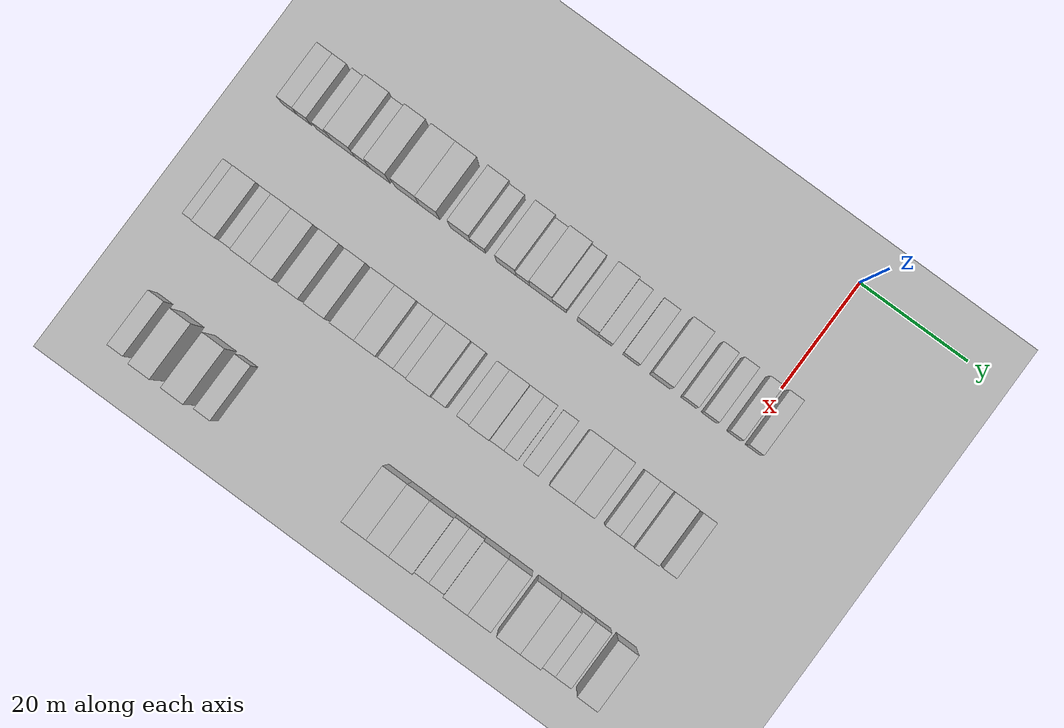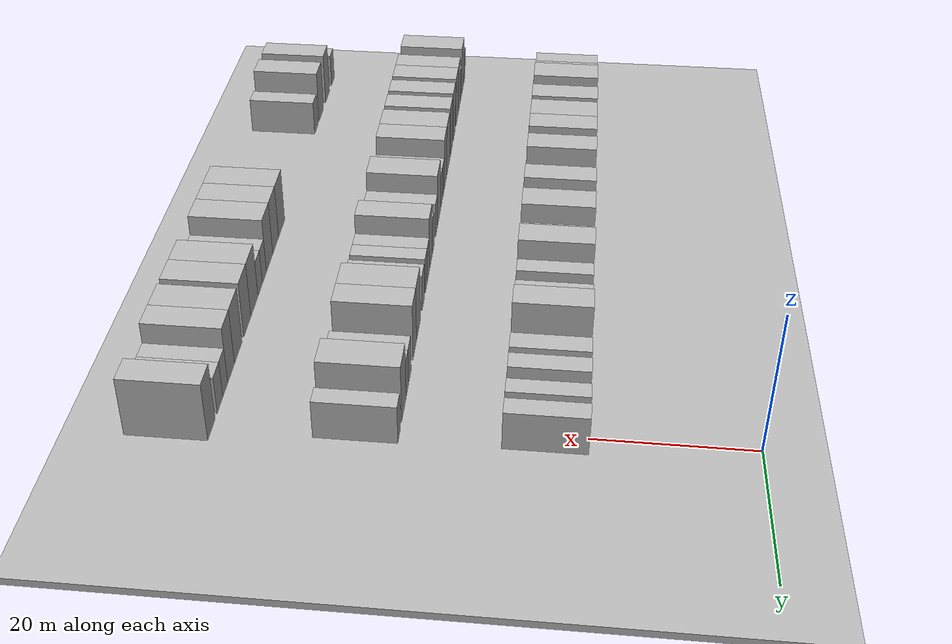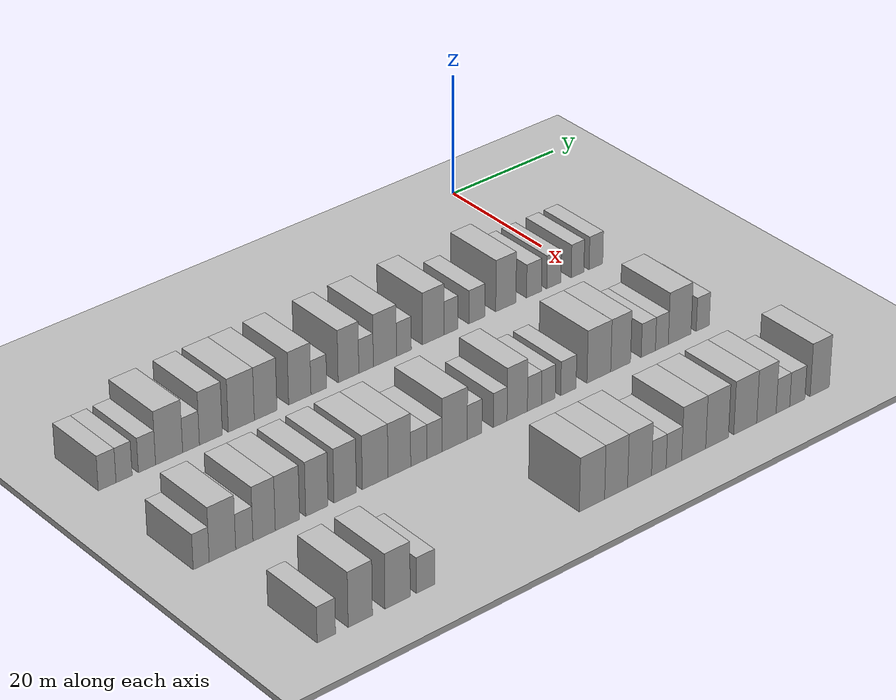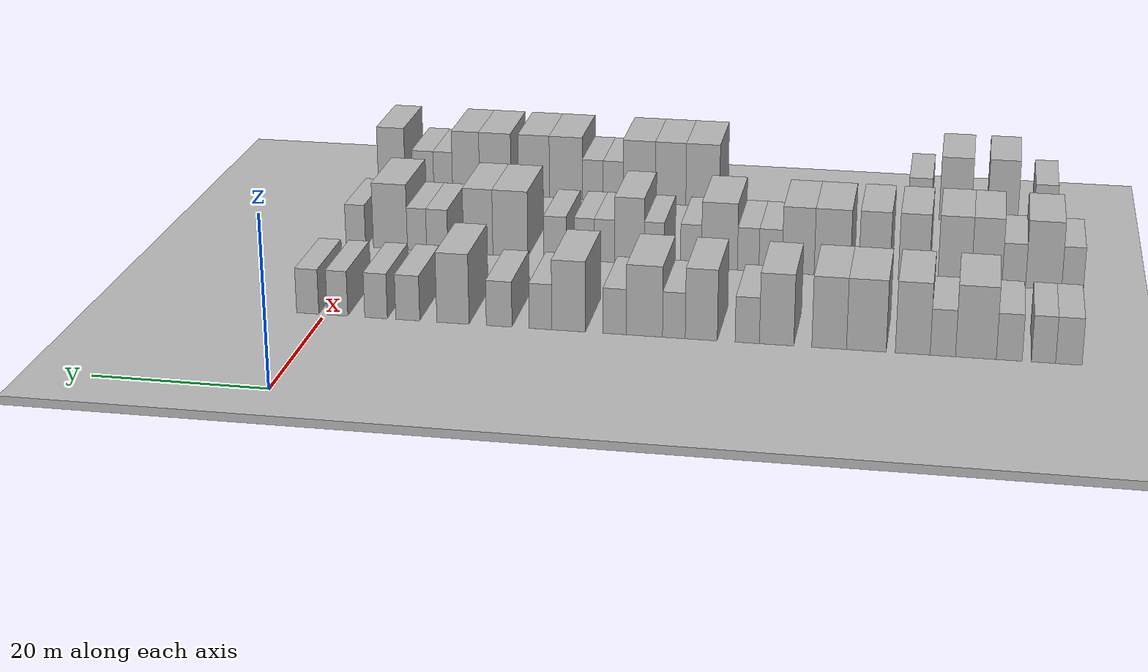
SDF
<sdf version="1.6">
 <world name="default">
  <include><name>ground_plane_1</name><uri>model://HANNAS_ground_plane</uri></include>
  <include>
   <name>ground_plane_2</name>
   <uri>model://HANNAS_ground_plane</uri>
   <pose>100 0 0  0 0 0</pose>
  </include>
  <model name="building_44">
   <static>1</static>
   <pose>25.0000 -84.5058 0 0.000000 0.000000 0.000000</pose>
   <link name="link">
    <pose>0 0 3.00 0 0 0</pose>
    <collision name="collision"><geometry><box><size>10.0000 2.8405 6.0000</size></box></geometry></collision>
    <visual name="visual">
     <cast_shadows>0</cast_shadows>
     <geometry><box><size>10.0000 2.8405 6.0000</size></box></geometry>
     <material>
      <script>
       <uri>model://HANNAS_wall/materials/scripts</uri>
       <uri>model://HANNAS_wall/materials/textures</uri>
       <name>vrc/HANNAS_wall</name>
      </script>
     </material>
    </visual>
   </link>
  </model>
  <model name="building_45">
   <static>1</static>
   <pose>25.0000 -81.7837 0 0.000000 0.000000 0.000000</pose>
   <link name="link">
    <pose>0 0 3.00 0 0 0</pose>
    <collision name="collision"><geometry><box><size>10.0000 2.6037 6.0000</size></box></geometry></collision>
    <visual name="visual">
     <cast_shadows>0</cast_shadows>
     <geometry><box><size>10.0000 2.6037 6.0000</size></box></geometry>
     <material>
      <script>
       <uri>model://HANNAS_wall/materials/scripts</uri>
       <uri>model://HANNAS_wall/materials/textures</uri>
       <name>vrc/HANNAS_wall</name>
      </script>
     </material>
    </visual>
   </link>
  </model>
  <model name="building_46">
   <static>1</static>
   <pose>25.0000 -78.0829 0 0.000000 0.000000 0.000000</pose>
   <link name="link">
    <pose>0 0 3.00 0 0 0</pose>
    <collision name="collision"><geometry><box><size>10.0000 2.7979 6.0000</size></box></geometry></collision>
    <visual name="visual">
     <cast_shadows>0</cast_shadows>
     <geometry><box><size>10.0000 2.7979 6.0000</size></box></geometry>
     <material>
      <script>
       <uri>model://HANNAS_wall/materials/scripts</uri>
       <uri>model://HANNAS_wall/materials/textures</uri>
       <name>vrc/HANNAS_wall</name>
      </script>
     </material>
    </visual>
   </link>
  </model>
  <model name="building_47">
   <static>1</static>
   <pose>25.0000 -74.4609 0 0.000000 0.000000 0.000000</pose>
   <link name="link">
    <pose>0 0 4.50 0 0 0</pose>
    <collision name="collision"><geometry><box><size>10.0000 4.4461 9.0000</size></box></geometry></collision>
    <visual name="visual">
     <cast_shadows>0</cast_shadows>
     <geometry><box><size>10.0000 4.4461 9.0000</size></box></geometry>
     <material>
      <script>
       <uri>model://HANNAS_wall/materials/scripts</uri>
       <uri>model://HANNAS_wall/materials/textures</uri>
       <name>vrc/HANNAS_wall</name>
      </script>
     </material>
    </visual>
   </link>
  </model>
  <model name="building_48">
   <static>1</static>
   <pose>25.0000 -70.8536 0 0.000000 0.000000 0.000000</pose>
   <link name="link">
    <pose>0 0 3.00 0 0 0</pose>
    <collision name="collision"><geometry><box><size>10.0000 2.7686 6.0000</size></box></geometry></collision>
    <visual name="visual">
     <cast_shadows>0</cast_shadows>
     <geometry><box><size>10.0000 2.7686 6.0000</size></box></geometry>
     <material>
      <script>
       <uri>model://HANNAS_wall/materials/scripts</uri>
       <uri>model://HANNAS_wall/materials/textures</uri>
       <name>vrc/HANNAS_wall</name>
      </script>
     </material>
    </visual>
   </link>
  </model>
  <model name="building_49">
   <static>1</static>
   <pose>25.0000 -67.5581 0 0.000000 0.000000 0.000000</pose>
   <link name="link">
    <pose>0 0 4.50 0 0 0</pose>
    <collision name="collision"><geometry><box><size>10.0000 3.8223 9.0000</size></box></geometry></collision>
    <visual name="visual">
     <cast_shadows>0</cast_shadows>
     <geometry><box><size>10.0000 3.8223 9.0000</size></box></geometry>
     <material>
      <script>
       <uri>model://HANNAS_wall/materials/scripts</uri>
       <uri>model://HANNAS_wall/materials/textures</uri>
       <name>vrc/HANNAS_wall</name>
      </script>
     </material>
    </visual>
   </link>
  </model>
  <model name="building_50">
   <static>1</static>
   <pose>25.0000 -62.4517 0 0.000000 0.000000 0.000000</pose>
   <link name="link">
    <pose>0 0 4.50 0 0 0</pose>
    <collision name="collision"><geometry><box><size>10.0000 4.3905 9.0000</size></box></geometry></collision>
    <visual name="visual">
     <cast_shadows>0</cast_shadows>
     <geometry><box><size>10.0000 4.3905 9.0000</size></box></geometry>
     <material>
      <script>
       <uri>model://HANNAS_wall/materials/scripts</uri>
       <uri>model://HANNAS_wall/materials/textures</uri>
       <name>vrc/HANNAS_wall</name>
      </script>
     </material>
    </visual>
   </link>
  </model>
  <model name="building_51">
   <static>1</static>
   <pose>25.0000 -58.3320 0 0.000000 0.000000 0.000000</pose>
   <link name="link">
    <pose>0 0 4.50 0 0 0</pose>
    <collision name="collision"><geometry><box><size>10.0000 3.8488 9.0000</size></box></geometry></collision>
    <visual name="visual">
     <cast_shadows>0</cast_shadows>
     <geometry><box><size>10.0000 3.8488 9.0000</size></box></geometry>
     <material>
      <script>
       <uri>model://HANNAS_wall/materials/scripts</uri>
       <uri>model://HANNAS_wall/materials/textures</uri>
       <name>vrc/HANNAS_wall</name>
      </script>
     </material>
    </visual>
   </link>
  </model>
  <model name="building_52">
   <static>1</static>
   <pose>25.0000 -52.4828 0 0.000000 0.000000 0.000000</pose>
   <link name="link">
    <pose>0 0 4.50 0 0 0</pose>
    <collision name="collision"><geometry><box><size>10.0000 3.8496 9.0000</size></box></geometry></collision>
    <visual name="visual">
     <cast_shadows>0</cast_shadows>
     <geometry><box><size>10.0000 3.8496 9.0000</size></box></geometry>
     <material>
      <script>
       <uri>model://HANNAS_wall/materials/scripts</uri>
       <uri>model://HANNAS_wall/materials/textures</uri>
       <name>vrc/HANNAS_wall</name>
      </script>
     </material>
    </visual>
   </link>
  </model>
  <model name="building_53">
   <static>1</static>
   <pose>25.0000 -49.1930 0 0.000000 0.000000 0.000000</pose>
   <link name="link">
    <pose>0 0 3.00 0 0 0</pose>
    <collision name="collision"><geometry><box><size>10.0000 2.7300 6.0000</size></box></geometry></collision>
    <visual name="visual">
     <cast_shadows>0</cast_shadows>
     <geometry><box><size>10.0000 2.7300 6.0000</size></box></geometry>
     <material>
      <script>
       <uri>model://HANNAS_wall/materials/scripts</uri>
       <uri>model://HANNAS_wall/materials/textures</uri>
       <name>vrc/HANNAS_wall</name>
      </script>
     </material>
    </visual>
   </link>
  </model>
  <model name="building_54">
   <static>1</static>
   <pose>25.0000 -44.0140 0 0.000000 0.000000 0.000000</pose>
   <link name="link">
    <pose>0 0 4.50 0 0 0</pose>
    <collision name="collision"><geometry><box><size>10.0000 3.6281 9.0000</size></box></geometry></collision>
    <visual name="visual">
     <cast_shadows>0</cast_shadows>
     <geometry><box><size>10.0000 3.6281 9.0000</size></box></geometry>
     <material>
      <script>
       <uri>model://HANNAS_wall/materials/scripts</uri>
       <uri>model://HANNAS_wall/materials/textures</uri>
       <name>vrc/HANNAS_wall</name>
      </script>
     </material>
    </visual>
   </link>
  </model>
  <model name="building_55">
   <static>1</static>
   <pose>25.0000 -40.9127 0 0.000000 0.000000 0.000000</pose>
   <link name="link">
    <pose>0 0 3.00 0 0 0</pose>
    <collision name="collision"><geometry><box><size>10.0000 2.5745 6.0000</size></box></geometry></collision>
    <visual name="visual">
     <cast_shadows>0</cast_shadows>
     <geometry><box><size>10.0000 2.5745 6.0000</size></box></geometry>
     <material>
      <script>
       <uri>model://HANNAS_wall/materials/scripts</uri>
       <uri>model://HANNAS_wall/materials/textures</uri>
       <name>vrc/HANNAS_wall</name>
      </script>
     </material>
    </visual>
   </link>
  </model>
  <model name="building_56">
   <static>1</static>
   <pose>25.0000 -37.5626 0 0.000000 0.000000 0.000000</pose>
   <link name="link">
    <pose>0 0 4.50 0 0 0</pose>
    <collision name="collision"><geometry><box><size>10.0000 4.1255 9.0000</size></box></geometry></collision>
    <visual name="visual">
     <cast_shadows>0</cast_shadows>
     <geometry><box><size>10.0000 4.1255 9.0000</size></box></geometry>
     <material>
      <script>
       <uri>model://HANNAS_wall/materials/scripts</uri>
       <uri>model://HANNAS_wall/materials/textures</uri>
       <name>vrc/HANNAS_wall</name>
      </script>
     </material>
    </visual>
   </link>
  </model>
  <model name="building_57">
   <static>1</static>
   <pose>25.0000 -34.1613 0 0.000000 0.000000 0.000000</pose>
   <link name="link">
    <pose>0 0 3.00 0 0 0</pose>
    <collision name="collision"><geometry><box><size>10.0000 2.6770 6.0000</size></box></geometry></collision>
    <visual name="visual">
     <cast_shadows>0</cast_shadows>
     <geometry><box><size>10.0000 2.6770 6.0000</size></box></geometry>
     <material>
      <script>
       <uri>model://HANNAS_wall/materials/scripts</uri>
       <uri>model://HANNAS_wall/materials/textures</uri>
       <name>vrc/HANNAS_wall</name>
      </script>
     </material>
    </visual>
   </link>
  </model>
  <model name="building_58">
   <static>1</static>
   <pose>25.0000 -28.8814 0 0.000000 0.000000 0.000000</pose>
   <link name="link">
    <pose>0 0 4.50 0 0 0</pose>
    <collision name="collision"><geometry><box><size>10.0000 3.8828 9.0000</size></box></geometry></collision>
    <visual name="visual">
     <cast_shadows>0</cast_shadows>
     <geometry><box><size>10.0000 3.8828 9.0000</size></box></geometry>
     <material>
      <script>
       <uri>model://HANNAS_wall/materials/scripts</uri>
       <uri>model://HANNAS_wall/materials/textures</uri>
       <name>vrc/HANNAS_wall</name>
      </script>
     </material>
    </visual>
   </link>
  </model>
  <model name="building_59">
   <static>1</static>
   <pose>25.0000 -25.6390 0 0.000000 0.000000 0.000000</pose>
   <link name="link">
    <pose>0 0 3.00 0 0 0</pose>
    <collision name="collision"><geometry><box><size>10.0000 2.6020 6.0000</size></box></geometry></collision>
    <visual name="visual">
     <cast_shadows>0</cast_shadows>
     <geometry><box><size>10.0000 2.6020 6.0000</size></box></geometry>
     <material>
      <script>
       <uri>model://HANNAS_wall/materials/scripts</uri>
       <uri>model://HANNAS_wall/materials/textures</uri>
       <name>vrc/HANNAS_wall</name>
      </script>
     </material>
    </visual>
   </link>
  </model>
  <model name="building_60">
   <static>1</static>
   <pose>25.0000 -20.8407 0 0.000000 0.000000 0.000000</pose>
   <link name="link">
    <pose>0 0 3.00 0 0 0</pose>
    <collision name="collision"><geometry><box><size>10.0000 2.9945 6.0000</size></box></geometry></collision>
    <visual name="visual">
     <cast_shadows>0</cast_shadows>
     <geometry><box><size>10.0000 2.9945 6.0000</size></box></geometry>
     <material>
      <script>
       <uri>model://HANNAS_wall/materials/scripts</uri>
       <uri>model://HANNAS_wall/materials/textures</uri>
       <name>vrc/HANNAS_wall</name>
      </script>
     </material>
    </visual>
   </link>
  </model>
  <model name="building_61">
   <static>1</static>
   <pose>25.0000 -15.4505 0 0.000000 0.000000 0.000000</pose>
   <link name="link">
    <pose>0 0 4.50 0 0 0</pose>
    <collision name="collision"><geometry><box><size>10.0000 3.7859 9.0000</size></box></geometry></collision>
    <visual name="visual">
     <cast_shadows>0</cast_shadows>
     <geometry><box><size>10.0000 3.7859 9.0000</size></box></geometry>
     <material>
      <script>
       <uri>model://HANNAS_wall/materials/scripts</uri>
       <uri>model://HANNAS_wall/materials/textures</uri>
       <name>vrc/HANNAS_wall</name>
      </script>
     </material>
    </visual>
   </link>
  </model>
  <model name="building_62">
   <static>1</static>
   <pose>25.0000 -10.1453 0 0.000000 0.000000 0.000000</pose>
   <link name="link">
    <pose>0 0 3.00 0 0 0</pose>
    <collision name="collision"><geometry><box><size>10.0000 2.8247 6.0000</size></box></geometry></collision>
    <visual name="visual">
     <cast_shadows>0</cast_shadows>
     <geometry><box><size>10.0000 2.8247 6.0000</size></box></geometry>
     <material>
      <script>
       <uri>model://HANNAS_wall/materials/scripts</uri>
       <uri>model://HANNAS_wall/materials/textures</uri>
       <name>vrc/HANNAS_wall</name>
      </script>
     </material>
    </visual>
   </link>
  </model>
  <model name="building_63">
   <static>1</static>
   <pose>25.0000 -6.3930 0 0.000000 0.000000 0.000000</pose>
   <link name="link">
    <pose>0 0 3.00 0 0 0</pose>
    <collision name="collision"><geometry><box><size>10.0000 2.6798 6.0000</size></box></geometry></collision>
    <visual name="visual">
     <cast_shadows>0</cast_shadows>
     <geometry><box><size>10.0000 2.6798 6.0000</size></box></geometry>
     <material>
      <script>
       <uri>model://HANNAS_wall/materials/scripts</uri>
       <uri>model://HANNAS_wall/materials/textures</uri>
       <name>vrc/HANNAS_wall</name>
      </script>
     </material>
    </visual>
   </link>
  </model>
  <model name="building_64">
   <static>1</static>
   <pose>25.0000 -1.8246 0 0.000000 0.000000 0.000000</pose>
   <link name="link">
    <pose>0 0 3.00 0 0 0</pose>
    <collision name="collision"><geometry><box><size>10.0000 2.4569 6.0000</size></box></geometry></collision>
    <visual name="visual">
     <cast_shadows>0</cast_shadows>
     <geometry><box><size>10.0000 2.4569 6.0000</size></box></geometry>
     <material>
      <script>
       <uri>model://HANNAS_wall/materials/scripts</uri>
       <uri>model://HANNAS_wall/materials/textures</uri>
       <name>vrc/HANNAS_wall</name>
      </script>
     </material>
    </visual>
   </link>
  </model>
  <model name="building_65">
   <static>1</static>
   <pose>25.0000 1.7316 0 0.000000 0.000000 0.000000</pose>
   <link name="link">
    <pose>0 0 3.00 0 0 0</pose>
    <collision name="collision"><geometry><box><size>10.0000 2.6555 6.0000</size></box></geometry></collision>
    <visual name="visual">
     <cast_shadows>0</cast_shadows>
     <geometry><box><size>10.0000 2.6555 6.0000</size></box></geometry>
     <material>
      <script>
       <uri>model://HANNAS_wall/materials/scripts</uri>
       <uri>model://HANNAS_wall/materials/textures</uri>
       <name>vrc/HANNAS_wall</name>
      </script>
     </material>
    </visual>
   </link>
  </model>
  <model name="building_170">
   <static>1</static>
   <pose>47.0000 -85.4432 0 0.000000 0.000000 0.000000</pose>
   <link name="link">
    <pose>0 0 3.00 0 0 0</pose>
    <collision name="collision"><geometry><box><size>10.0000 2.5335 6.0000</size></box></geometry></collision>
    <visual name="visual">
     <cast_shadows>0</cast_shadows>
     <geometry><box><size>10.0000 2.5335 6.0000</size></box></geometry>
     <material>
      <script>
       <uri>model://HANNAS_wall/materials/scripts</uri>
       <uri>model://HANNAS_wall/materials/textures</uri>
       <name>vrc/HANNAS_wall</name>
      </script>
     </material>
    </visual>
   </link>
  </model>
  <model name="building_171">
   <static>1</static>
   <pose>47.0000 -82.0679 0 0.000000 0.000000 0.000000</pose>
   <link name="link">
    <pose>0 0 4.50 0 0 0</pose>
    <collision name="collision"><geometry><box><size>10.0000 4.2171 9.0000</size></box></geometry></collision>
    <visual name="visual">
     <cast_shadows>0</cast_shadows>
     <geometry><box><size>10.0000 4.2171 9.0000</size></box></geometry>
     <material>
      <script>
       <uri>model://HANNAS_wall/materials/scripts</uri>
       <uri>model://HANNAS_wall/materials/textures</uri>
       <name>vrc/HANNAS_wall</name>
      </script>
     </material>
    </visual>
   </link>
  </model>
  <model name="building_172">
   <static>1</static>
   <pose>47.0000 -78.5802 0 0.000000 0.000000 0.000000</pose>
   <link name="link">
    <pose>0 0 3.00 0 0 0</pose>
    <collision name="collision"><geometry><box><size>10.0000 2.7584 6.0000</size></box></geometry></collision>
    <visual name="visual">
     <cast_shadows>0</cast_shadows>
     <geometry><box><size>10.0000 2.7584 6.0000</size></box></geometry>
     <material>
      <script>
       <uri>model://HANNAS_wall/materials/scripts</uri>
       <uri>model://HANNAS_wall/materials/textures</uri>
       <name>vrc/HANNAS_wall</name>
      </script>
     </material>
    </visual>
   </link>
  </model>
  <model name="building_173">
   <static>1</static>
   <pose>47.0000 -75.3910 0 0.000000 0.000000 0.000000</pose>
   <link name="link">
    <pose>0 0 4.50 0 0 0</pose>
    <collision name="collision"><geometry><box><size>10.0000 3.6202 9.0000</size></box></geometry></collision>
    <visual name="visual">
     <cast_shadows>0</cast_shadows>
     <geometry><box><size>10.0000 3.6202 9.0000</size></box></geometry>
     <material>
      <script>
       <uri>model://HANNAS_wall/materials/scripts</uri>
       <uri>model://HANNAS_wall/materials/textures</uri>
       <name>vrc/HANNAS_wall</name>
      </script>
     </material>
    </visual>
   </link>
  </model>
  <model name="building_174">
   <static>1</static>
   <pose>47.0000 -71.5980 0 0.000000 0.000000 0.000000</pose>
   <link name="link">
    <pose>0 0 4.50 0 0 0</pose>
    <collision name="collision"><geometry><box><size>10.0000 3.9658 9.0000</size></box></geometry></collision>
    <visual name="visual">
     <cast_shadows>0</cast_shadows>
     <geometry><box><size>10.0000 3.9658 9.0000</size></box></geometry>
     <material>
      <script>
       <uri>model://HANNAS_wall/materials/scripts</uri>
       <uri>model://HANNAS_wall/materials/textures</uri>
       <name>vrc/HANNAS_wall</name>
      </script>
     </material>
    </visual>
   </link>
  </model>
  <model name="building_175">
   <static>1</static>
   <pose>47.0000 -66.7783 0 0.000000 0.000000 0.000000</pose>
   <link name="link">
    <pose>0 0 4.50 0 0 0</pose>
    <collision name="collision"><geometry><box><size>10.0000 3.6736 9.0000</size></box></geometry></collision>
    <visual name="visual">
     <cast_shadows>0</cast_shadows>
     <geometry><box><size>10.0000 3.6736 9.0000</size></box></geometry>
     <material>
      <script>
       <uri>model://HANNAS_wall/materials/scripts</uri>
       <uri>model://HANNAS_wall/materials/textures</uri>
       <name>vrc/HANNAS_wall</name>
      </script>
     </material>
    </visual>
   </link>
  </model>
  <model name="building_176">
   <static>1</static>
   <pose>47.0000 -62.0770 0 0.000000 0.000000 0.000000</pose>
   <link name="link">
    <pose>0 0 4.50 0 0 0</pose>
    <collision name="collision"><geometry><box><size>10.0000 3.7291 9.0000</size></box></geometry></collision>
    <visual name="visual">
     <cast_shadows>0</cast_shadows>
     <geometry><box><size>10.0000 3.7291 9.0000</size></box></geometry>
     <material>
      <script>
       <uri>model://HANNAS_wall/materials/scripts</uri>
       <uri>model://HANNAS_wall/materials/textures</uri>
       <name>vrc/HANNAS_wall</name>
      </script>
     </material>
    </visual>
   </link>
  </model>
  <model name="building_177">
   <static>1</static>
   <pose>47.0000 -57.0420 0 0.000000 0.000000 0.000000</pose>
   <link name="link">
    <pose>0 0 4.50 0 0 0</pose>
    <collision name="collision"><geometry><box><size>10.0000 4.3408 9.0000</size></box></geometry></collision>
    <visual name="visual">
     <cast_shadows>0</cast_shadows>
     <geometry><box><size>10.0000 4.3408 9.0000</size></box></geometry>
     <material>
      <script>
       <uri>model://HANNAS_wall/materials/scripts</uri>
       <uri>model://HANNAS_wall/materials/textures</uri>
       <name>vrc/HANNAS_wall</name>
      </script>
     </material>
    </visual>
   </link>
  </model>
  <model name="building_178">
   <static>1</static>
   <pose>47.0000 -52.9338 0 0.000000 0.000000 0.000000</pose>
   <link name="link">
    <pose>0 0 4.50 0 0 0</pose>
    <collision name="collision"><geometry><box><size>10.0000 3.8756 9.0000</size></box></geometry></collision>
    <visual name="visual">
     <cast_shadows>0</cast_shadows>
     <geometry><box><size>10.0000 3.8756 9.0000</size></box></geometry>
     <material>
      <script>
       <uri>model://HANNAS_wall/materials/scripts</uri>
       <uri>model://HANNAS_wall/materials/textures</uri>
       <name>vrc/HANNAS_wall</name>
      </script>
     </material>
    </visual>
   </link>
  </model>
  <model name="building_179">
   <static>1</static>
   <pose>47.0000 -49.5938 0 0.000000 0.000000 0.000000</pose>
   <link name="link">
    <pose>0 0 3.00 0 0 0</pose>
    <collision name="collision"><geometry><box><size>10.0000 2.8046 6.0000</size></box></geometry></collision>
    <visual name="visual">
     <cast_shadows>0</cast_shadows>
     <geometry><box><size>10.0000 2.8046 6.0000</size></box></geometry>
     <material>
      <script>
       <uri>model://HANNAS_wall/materials/scripts</uri>
       <uri>model://HANNAS_wall/materials/textures</uri>
       <name>vrc/HANNAS_wall</name>
      </script>
     </material>
    </visual>
   </link>
  </model>
  <model name="building_180">
   <static>1</static>
   <pose>47.0000 -46.8817 0 0.000000 0.000000 0.000000</pose>
   <link name="link">
    <pose>0 0 3.00 0 0 0</pose>
    <collision name="collision"><geometry><box><size>10.0000 2.6195 6.0000</size></box></geometry></collision>
    <visual name="visual">
     <cast_shadows>0</cast_shadows>
     <geometry><box><size>10.0000 2.6195 6.0000</size></box></geometry>
     <material>
      <script>
       <uri>model://HANNAS_wall/materials/scripts</uri>
       <uri>model://HANNAS_wall/materials/textures</uri>
       <name>vrc/HANNAS_wall</name>
      </script>
     </material>
    </visual>
   </link>
  </model>
  <model name="building_181">
   <static>1</static>
   <pose>47.0000 -43.3803 0 0.000000 0.000000 0.000000</pose>
   <link name="link">
    <pose>0 0 4.50 0 0 0</pose>
    <collision name="collision"><geometry><box><size>10.0000 4.3834 9.0000</size></box></geometry></collision>
    <visual name="visual">
     <cast_shadows>0</cast_shadows>
     <geometry><box><size>10.0000 4.3834 9.0000</size></box></geometry>
     <material>
      <script>
       <uri>model://HANNAS_wall/materials/scripts</uri>
       <uri>model://HANNAS_wall/materials/textures</uri>
       <name>vrc/HANNAS_wall</name>
      </script>
     </material>
    </visual>
   </link>
  </model>
  <model name="building_182">
   <static>1</static>
   <pose>47.0000 -39.9063 0 0.000000 0.000000 0.000000</pose>
   <link name="link">
    <pose>0 0 3.00 0 0 0</pose>
    <collision name="collision"><geometry><box><size>10.0000 2.5646 6.0000</size></box></geometry></collision>
    <visual name="visual">
     <cast_shadows>0</cast_shadows>
     <geometry><box><size>10.0000 2.5646 6.0000</size></box></geometry>
     <material>
      <script>
       <uri>model://HANNAS_wall/materials/scripts</uri>
       <uri>model://HANNAS_wall/materials/textures</uri>
       <name>vrc/HANNAS_wall</name>
      </script>
     </material>
    </visual>
   </link>
  </model>
  <model name="building_183">
   <static>1</static>
   <pose>47.0000 -35.3991 0 0.000000 0.000000 0.000000</pose>
   <link name="link">
    <pose>0 0 3.00 0 0 0</pose>
    <collision name="collision"><geometry><box><size>10.0000 2.4497 6.0000</size></box></geometry></collision>
    <visual name="visual">
     <cast_shadows>0</cast_shadows>
     <geometry><box><size>10.0000 2.4497 6.0000</size></box></geometry>
     <material>
      <script>
       <uri>model://HANNAS_wall/materials/scripts</uri>
       <uri>model://HANNAS_wall/materials/textures</uri>
       <name>vrc/HANNAS_wall</name>
      </script>
     </material>
    </visual>
   </link>
  </model>
  <model name="building_184">
   <static>1</static>
   <pose>47.0000 -32.3540 0 0.000000 0.000000 0.000000</pose>
   <link name="link">
    <pose>0 0 4.50 0 0 0</pose>
    <collision name="collision"><geometry><box><size>10.0000 3.6405 9.0000</size></box></geometry></collision>
    <visual name="visual">
     <cast_shadows>0</cast_shadows>
     <geometry><box><size>10.0000 3.6405 9.0000</size></box></geometry>
     <material>
      <script>
       <uri>model://HANNAS_wall/materials/scripts</uri>
       <uri>model://HANNAS_wall/materials/textures</uri>
       <name>vrc/HANNAS_wall</name>
      </script>
     </material>
    </visual>
   </link>
  </model>
  <model name="building_185">
   <static>1</static>
   <pose>47.0000 -29.2591 0 0.000000 0.000000 0.000000</pose>
   <link name="link">
    <pose>0 0 3.00 0 0 0</pose>
    <collision name="collision"><geometry><box><size>10.0000 2.5494 6.0000</size></box></geometry></collision>
    <visual name="visual">
     <cast_shadows>0</cast_shadows>
     <geometry><box><size>10.0000 2.5494 6.0000</size></box></geometry>
     <material>
      <script>
       <uri>model://HANNAS_wall/materials/scripts</uri>
       <uri>model://HANNAS_wall/materials/textures</uri>
       <name>vrc/HANNAS_wall</name>
      </script>
     </material>
    </visual>
   </link>
  </model>
  <model name="building_186">
   <static>1</static>
   <pose>47.0000 -26.7447 0 0.000000 0.000000 0.000000</pose>
   <link name="link">
    <pose>0 0 3.00 0 0 0</pose>
    <collision name="collision"><geometry><box><size>10.0000 2.4794 6.0000</size></box></geometry></collision>
    <visual name="visual">
     <cast_shadows>0</cast_shadows>
     <geometry><box><size>10.0000 2.4794 6.0000</size></box></geometry>
     <material>
      <script>
       <uri>model://HANNAS_wall/materials/scripts</uri>
       <uri>model://HANNAS_wall/materials/textures</uri>
       <name>vrc/HANNAS_wall</name>
      </script>
     </material>
    </visual>
   </link>
  </model>
  <model name="building_187">
   <static>1</static>
   <pose>47.0000 -23.1030 0 0.000000 0.000000 0.000000</pose>
   <link name="link">
    <pose>0 0 3.00 0 0 0</pose>
    <collision name="collision"><geometry><box><size>10.0000 2.8040 6.0000</size></box></geometry></collision>
    <visual name="visual">
     <cast_shadows>0</cast_shadows>
     <geometry><box><size>10.0000 2.8040 6.0000</size></box></geometry>
     <material>
      <script>
       <uri>model://HANNAS_wall/materials/scripts</uri>
       <uri>model://HANNAS_wall/materials/textures</uri>
       <name>vrc/HANNAS_wall</name>
      </script>
     </material>
    </visual>
   </link>
  </model>
  <model name="building_188">
   <static>1</static>
   <pose>47.0000 -17.5012 0 0.000000 0.000000 0.000000</pose>
   <link name="link">
    <pose>0 0 4.50 0 0 0</pose>
    <collision name="collision"><geometry><box><size>10.0000 4.3997 9.0000</size></box></geometry></collision>
    <visual name="visual">
     <cast_shadows>0</cast_shadows>
     <geometry><box><size>10.0000 4.3997 9.0000</size></box></geometry>
     <material>
      <script>
       <uri>model://HANNAS_wall/materials/scripts</uri>
       <uri>model://HANNAS_wall/materials/textures</uri>
       <name>vrc/HANNAS_wall</name>
      </script>
     </material>
    </visual>
   </link>
  </model>
  <model name="building_189">
   <static>1</static>
   <pose>47.0000 -13.4526 0 0.000000 0.000000 0.000000</pose>
   <link name="link">
    <pose>0 0 4.50 0 0 0</pose>
    <collision name="collision"><geometry><box><size>10.0000 3.6974 9.0000</size></box></geometry></collision>
    <visual name="visual">
     <cast_shadows>0</cast_shadows>
     <geometry><box><size>10.0000 3.6974 9.0000</size></box></geometry>
     <material>
      <script>
       <uri>model://HANNAS_wall/materials/scripts</uri>
       <uri>model://HANNAS_wall/materials/textures</uri>
       <name>vrc/HANNAS_wall</name>
      </script>
     </material>
    </visual>
   </link>
  </model>
  <model name="building_190">
   <static>1</static>
   <pose>47.0000 -8.2562 0 0.000000 0.000000 0.000000</pose>
   <link name="link">
    <pose>0 0 3.00 0 0 0</pose>
    <collision name="collision"><geometry><box><size>10.0000 2.6953 6.0000</size></box></geometry></collision>
    <visual name="visual">
     <cast_shadows>0</cast_shadows>
     <geometry><box><size>10.0000 2.6953 6.0000</size></box></geometry>
     <material>
      <script>
       <uri>model://HANNAS_wall/materials/scripts</uri>
       <uri>model://HANNAS_wall/materials/textures</uri>
       <name>vrc/HANNAS_wall</name>
      </script>
     </material>
    </visual>
   </link>
  </model>
  <model name="building_191">
   <static>1</static>
   <pose>47.0000 -5.6878 0 0.000000 0.000000 0.000000</pose>
   <link name="link">
    <pose>0 0 3.00 0 0 0</pose>
    <collision name="collision"><geometry><box><size>10.0000 2.4415 6.0000</size></box></geometry></collision>
    <visual name="visual">
     <cast_shadows>0</cast_shadows>
     <geometry><box><size>10.0000 2.4415 6.0000</size></box></geometry>
     <material>
      <script>
       <uri>model://HANNAS_wall/materials/scripts</uri>
       <uri>model://HANNAS_wall/materials/textures</uri>
       <name>vrc/HANNAS_wall</name>
      </script>
     </material>
    </visual>
   </link>
  </model>
  <model name="building_192">
   <static>1</static>
   <pose>47.0000 -2.2883 0 0.000000 0.000000 0.000000</pose>
   <link name="link">
    <pose>0 0 4.50 0 0 0</pose>
    <collision name="collision"><geometry><box><size>10.0000 4.3574 9.0000</size></box></geometry></collision>
    <visual name="visual">
     <cast_shadows>0</cast_shadows>
     <geometry><box><size>10.0000 4.3574 9.0000</size></box></geometry>
     <material>
      <script>
       <uri>model://HANNAS_wall/materials/scripts</uri>
       <uri>model://HANNAS_wall/materials/textures</uri>
       <name>vrc/HANNAS_wall</name>
      </script>
     </material>
    </visual>
   </link>
  </model>
  <model name="building_193">
   <static>1</static>
   <pose>47.0000 2.1448 0 0.000000 0.000000 0.000000</pose>
   <link name="link">
    <pose>0 0 3.00 0 0 0</pose>
    <collision name="collision"><geometry><box><size>10.0000 2.5087 6.0000</size></box></geometry></collision>
    <visual name="visual">
     <cast_shadows>0</cast_shadows>
     <geometry><box><size>10.0000 2.5087 6.0000</size></box></geometry>
     <material>
      <script>
       <uri>model://HANNAS_wall/materials/scripts</uri>
       <uri>model://HANNAS_wall/materials/textures</uri>
       <name>vrc/HANNAS_wall</name>
      </script>
     </material>
    </visual>
   </link>
  </model>
  <model name="building_293">
   <static>1</static>
   <pose>69.0000 -82.5402 0 0.000000 0.000000 0.000000</pose>
   <link name="link">
    <pose>0 0 3.00 0 0 0</pose>
    <collision name="collision"><geometry><box><size>10.0000 2.8922 6.0000</size></box></geometry></collision>
    <visual name="visual">
     <cast_shadows>0</cast_shadows>
     <geometry><box><size>10.0000 2.8922 6.0000</size></box></geometry>
     <material>
      <script>
       <uri>model://HANNAS_wall/materials/scripts</uri>
       <uri>model://HANNAS_wall/materials/textures</uri>
       <name>vrc/HANNAS_wall</name>
      </script>
     </material>
    </visual>
   </link>
  </model>
  <model name="building_294">
   <static>1</static>
   <pose>69.0000 -77.1632 0 0.000000 0.000000 0.000000</pose>
   <link name="link">
    <pose>0 0 4.50 0 0 0</pose>
    <collision name="collision"><geometry><box><size>10.0000 3.8617 9.0000</size></box></geometry></collision>
    <visual name="visual">
     <cast_shadows>0</cast_shadows>
     <geometry><box><size>10.0000 3.8617 9.0000</size></box></geometry>
     <material>
      <script>
       <uri>model://HANNAS_wall/materials/scripts</uri>
       <uri>model://HANNAS_wall/materials/textures</uri>
       <name>vrc/HANNAS_wall</name>
      </script>
     </material>
    </visual>
   </link>
  </model>
  <model name="building_295">
   <static>1</static>
   <pose>69.0000 -71.1902 0 0.000000 0.000000 0.000000</pose>
   <link name="link">
    <pose>0 0 4.50 0 0 0</pose>
    <collision name="collision"><geometry><box><size>10.0000 4.0842 9.0000</size></box></geometry></collision>
    <visual name="visual">
     <cast_shadows>0</cast_shadows>
     <geometry><box><size>10.0000 4.0842 9.0000</size></box></geometry>
     <material>
      <script>
       <uri>model://HANNAS_wall/materials/scripts</uri>
       <uri>model://HANNAS_wall/materials/textures</uri>
       <name>vrc/HANNAS_wall</name>
      </script>
     </material>
    </visual>
   </link>
  </model>
  <model name="building_296">
   <static>1</static>
   <pose>69.0000 -66.6579 0 0.000000 0.000000 0.000000</pose>
   <link name="link">
    <pose>0 0 3.00 0 0 0</pose>
    <collision name="collision"><geometry><box><size>10.0000 2.9804 6.0000</size></box></geometry></collision>
    <visual name="visual">
     <cast_shadows>0</cast_shadows>
     <geometry><box><size>10.0000 2.9804 6.0000</size></box></geometry>
     <material>
      <script>
       <uri>model://HANNAS_wall/materials/scripts</uri>
       <uri>model://HANNAS_wall/materials/textures</uri>
       <name>vrc/HANNAS_wall</name>
      </script>
     </material>
    </visual>
   </link>
  </model>
  <model name="building_297">
   <static>1</static>
   <pose>69.0000 -38.5208 0 0.000000 0.000000 0.000000</pose>
   <link name="link">
    <pose>0 0 4.50 0 0 0</pose>
    <collision name="collision"><geometry><box><size>10.0000 4.4313 9.0000</size></box></geometry></collision>
    <visual name="visual">
     <cast_shadows>0</cast_shadows>
     <geometry><box><size>10.0000 4.4313 9.0000</size></box></geometry>
     <material>
      <script>
       <uri>model://HANNAS_wall/materials/scripts</uri>
       <uri>model://HANNAS_wall/materials/textures</uri>
       <name>vrc/HANNAS_wall</name>
      </script>
     </material>
    </visual>
   </link>
  </model>
  <model name="building_298">
   <static>1</static>
   <pose>69.0000 -34.2749 0 0.000000 0.000000 0.000000</pose>
   <link name="link">
    <pose>0 0 4.50 0 0 0</pose>
    <collision name="collision"><geometry><box><size>10.0000 4.0606 9.0000</size></box></geometry></collision>
    <visual name="visual">
     <cast_shadows>0</cast_shadows>
     <geometry><box><size>10.0000 4.0606 9.0000</size></box></geometry>
     <material>
      <script>
       <uri>model://HANNAS_wall/materials/scripts</uri>
       <uri>model://HANNAS_wall/materials/textures</uri>
       <name>vrc/HANNAS_wall</name>
      </script>
     </material>
    </visual>
   </link>
  </model>
  <model name="building_299">
   <static>1</static>
   <pose>69.0000 -30.1095 0 0.000000 0.000000 0.000000</pose>
   <link name="link">
    <pose>0 0 4.50 0 0 0</pose>
    <collision name="collision"><geometry><box><size>10.0000 4.2702 9.0000</size></box></geometry></collision>
    <visual name="visual">
     <cast_shadows>0</cast_shadows>
     <geometry><box><size>10.0000 4.2702 9.0000</size></box></geometry>
     <material>
      <script>
       <uri>model://HANNAS_wall/materials/scripts</uri>
       <uri>model://HANNAS_wall/materials/textures</uri>
       <name>vrc/HANNAS_wall</name>
      </script>
     </material>
    </visual>
   </link>
  </model>
  <model name="building_300">
   <static>1</static>
   <pose>69.0000 -26.6581 0 0.000000 0.000000 0.000000</pose>
   <link name="link">
    <pose>0 0 3.00 0 0 0</pose>
    <collision name="collision"><geometry><box><size>10.0000 2.6326 6.0000</size></box></geometry></collision>
    <visual name="visual">
     <cast_shadows>0</cast_shadows>
     <geometry><box><size>10.0000 2.6326 6.0000</size></box></geometry>
     <material>
      <script>
       <uri>model://HANNAS_wall/materials/scripts</uri>
       <uri>model://HANNAS_wall/materials/textures</uri>
       <name>vrc/HANNAS_wall</name>
      </script>
     </material>
    </visual>
   </link>
  </model>
  <model name="building_301">
   <static>1</static>
   <pose>69.0000 -23.9382 0 0.000000 0.000000 0.000000</pose>
   <link name="link">
    <pose>0 0 3.00 0 0 0</pose>
    <collision name="collision"><geometry><box><size>10.0000 2.8071 6.0000</size></box></geometry></collision>
    <visual name="visual">
     <cast_shadows>0</cast_shadows>
     <geometry><box><size>10.0000 2.8071 6.0000</size></box></geometry>
     <material>
      <script>
       <uri>model://HANNAS_wall/materials/scripts</uri>
       <uri>model://HANNAS_wall/materials/textures</uri>
       <name>vrc/HANNAS_wall</name>
      </script>
     </material>
    </visual>
   </link>
  </model>
  <model name="building_302">
   <static>1</static>
   <pose>69.0000 -20.3365 0 0.000000 0.000000 0.000000</pose>
   <link name="link">
    <pose>0 0 4.50 0 0 0</pose>
    <collision name="collision"><geometry><box><size>10.0000 4.3962 9.0000</size></box></geometry></collision>
    <visual name="visual">
     <cast_shadows>0</cast_shadows>
     <geometry><box><size>10.0000 4.3962 9.0000</size></box></geometry>
     <material>
      <script>
       <uri>model://HANNAS_wall/materials/scripts</uri>
       <uri>model://HANNAS_wall/materials/textures</uri>
       <name>vrc/HANNAS_wall</name>
      </script>
     </material>
    </visual>
   </link>
  </model>
  <model name="building_303">
   <static>1</static>
   <pose>69.0000 -16.0466 0 0.000000 0.000000 0.000000</pose>
   <link name="link">
    <pose>0 0 4.50 0 0 0</pose>
    <collision name="collision"><geometry><box><size>10.0000 4.1838 9.0000</size></box></geometry></collision>
    <visual name="visual">
     <cast_shadows>0</cast_shadows>
     <geometry><box><size>10.0000 4.1838 9.0000</size></box></geometry>
     <material>
      <script>
       <uri>model://HANNAS_wall/materials/scripts</uri>
       <uri>model://HANNAS_wall/materials/textures</uri>
       <name>vrc/HANNAS_wall</name>
      </script>
     </material>
    </visual>
   </link>
  </model>
  <model name="building_304">
   <static>1</static>
   <pose>69.0000 -10.8185 0 0.000000 0.000000 0.000000</pose>
   <link name="link">
    <pose>0 0 4.50 0 0 0</pose>
    <collision name="collision"><geometry><box><size>10.0000 4.2724 9.0000</size></box></geometry></collision>
    <visual name="visual">
     <cast_shadows>0</cast_shadows>
     <geometry><box><size>10.0000 4.2724 9.0000</size></box></geometry>
     <material>
      <script>
       <uri>model://HANNAS_wall/materials/scripts</uri>
       <uri>model://HANNAS_wall/materials/textures</uri>
       <name>vrc/HANNAS_wall</name>
      </script>
     </material>
    </visual>
   </link>
  </model>
  <model name="building_305">
   <static>1</static>
   <pose>69.0000 -6.8462 0 0.000000 0.000000 0.000000</pose>
   <link name="link">
    <pose>0 0 4.50 0 0 0</pose>
    <collision name="collision"><geometry><box><size>10.0000 3.6723 9.0000</size></box></geometry></collision>
    <visual name="visual">
     <cast_shadows>0</cast_shadows>
     <geometry><box><size>10.0000 3.6723 9.0000</size></box></geometry>
     <material>
      <script>
       <uri>model://HANNAS_wall/materials/scripts</uri>
       <uri>model://HANNAS_wall/materials/textures</uri>
       <name>vrc/HANNAS_wall</name>
      </script>
     </material>
    </visual>
   </link>
  </model>
  <model name="building_306">
   <static>1</static>
   <pose>69.0000 -3.7230 0 0.000000 0.000000 0.000000</pose>
   <link name="link">
    <pose>0 0 3.00 0 0 0</pose>
    <collision name="collision"><geometry><box><size>10.0000 2.5742 6.0000</size></box></geometry></collision>
    <visual name="visual">
     <cast_shadows>0</cast_shadows>
     <geometry><box><size>10.0000 2.5742 6.0000</size></box></geometry>
     <material>
      <script>
       <uri>model://HANNAS_wall/materials/scripts</uri>
       <uri>model://HANNAS_wall/materials/textures</uri>
       <name>vrc/HANNAS_wall</name>
      </script>
     </material>
    </visual>
   </link>
  </model>
  <model name="building_307">
   <static>1</static>
   <pose>69.0000 -0.9875 0 0.000000 0.000000 0.000000</pose>
   <link name="link">
    <pose>0 0 3.00 0 0 0</pose>
    <collision name="collision"><geometry><box><size>10.0000 2.8967 6.0000</size></box></geometry></collision>
    <visual name="visual">
     <cast_shadows>0</cast_shadows>
     <geometry><box><size>10.0000 2.8967 6.0000</size></box></geometry>
     <material>
      <script>
       <uri>model://HANNAS_wall/materials/scripts</uri>
       <uri>model://HANNAS_wall/materials/textures</uri>
       <name>vrc/HANNAS_wall</name>
      </script>
     </material>
    </visual>
   </link>
  </model>
  <model name="building_308">
   <static>1</static>
   <pose>69.0000 3.3089 0 0.000000 0.000000 0.000000</pose>
   <link name="link">
    <pose>0 0 4.50 0 0 0</pose>
    <collision name="collision"><geometry><box><size>10.0000 3.6963 9.0000</size></box></geometry></collision>
    <visual name="visual">
     <cast_shadows>0</cast_shadows>
     <geometry><box><size>10.0000 3.6963 9.0000</size></box></geometry>
     <material>
      <script>
       <uri>model://HANNAS_wall/materials/scripts</uri>
       <uri>model://HANNAS_wall/materials/textures</uri>
       <name>vrc/HANNAS_wall</name>
      </script>
     </material>
    </visual>
   </link>
  </model>
 </world>
</sdf>
